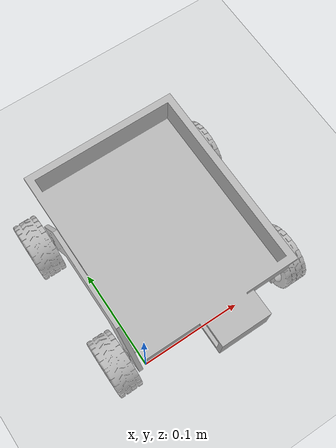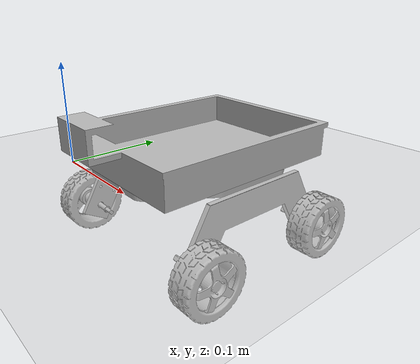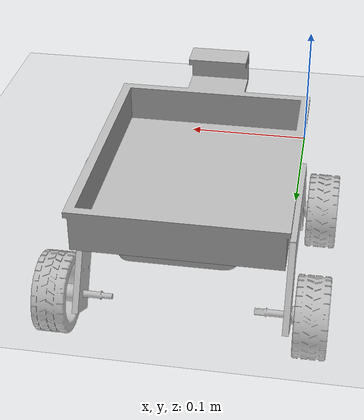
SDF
<?xml version="1.0" ?>
<sdf version="1.9">
  <world name="default">

    <plugin
      filename="gz-sim-physics-system"
      name="gz::sim::systems::Physics"/>

    <plugin
      filename="gz-sim-user-commands-system"
      name="gz::sim::systems::UserCommands"/>

    <plugin
      filename="gz-sim-scene-broadcaster-system"
      name="gz::sim::systems::SceneBroadcaster"/>

    <plugin
      filename="gz-sim-contact-system"
      name="gz::sim::systems::Contact"/>

    <light name="sun" type="directional">
      <cast_shadows>true</cast_shadows>
      <pose>0 0 10 0 0 0</pose>
      <diffuse>0.8 0.8 0.8 1</diffuse>
      <specular>0.2 0.2 0.2 1</specular>
      <direction>-0.5 0.1 -0.9</direction>
    </light>

    <model name="ground_plane">
      <static>true</static>
      <link name="link">
        <collision name="collision">
          <geometry>
            <plane>
              <normal>0 0 1</normal>
              <size>100 100</size>
            </plane>
          </geometry>
        </collision>

        <visual name="visual">
          <geometry>
            <plane>
              <normal>0 0 1</normal>
              <size>100 100</size>
            </plane>
          </geometry>
        </visual>
      </link>
    </model>

    <include>
      <uri>/home/ishan/Documents/ros_mobile_robot/fusionSDF</uri>
    </include>

  </world>
</sdf>

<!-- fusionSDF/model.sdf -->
<sdf version="1.9">
  <model name="finalassembly_v3">
    <link name="base_link">
      <inertial>
        <mass>0.0001</mass>
        <inertia>
          <ixx>1e-09</ixx>
          <ixy>0</ixy>
          <ixz>0</ixz>
          <iyy>1e-09</iyy>
          <iyz>0</iyz>
          <izz>1e-09</izz>
        </inertia>
      </inertial>
    </link>
    <link name="base_link_1">
      <inertial>
        <pose>0.08000000000000008 0.09545598293362575 0.0068908634732035455 0.0 -0.0 0.0</pose>
        <mass>3.9409647200439992</mass>
        <inertia>
          <ixx>0.017709947701599185</ixx>
          <ixy>1.7694179454963432e-16</ixy>
          <ixz>-8.673617379884035e-19</ixz>
          <iyy>0.013743217946582138</iyy>
          <iyz>0.000759111480018366</iyz>
          <izz>0.0282437401639066</izz>
        </inertia>
      </inertial>
      <visual name="base_link_1__body1_visual">
        <geometry>
          <mesh>
            <scale>0.01 0.01 0.01</scale>
            <uri>meshes/base_link_1/body1_visual.obj</uri>
          </mesh>
        </geometry>
      </visual>
      <visual name="base_link_1__body2_visual">
        <geometry>
          <mesh>
            <scale>0.01 0.01 0.01</scale>
            <uri>meshes/base_link_1/body2_visual.obj</uri>
          </mesh>
        </geometry>
      </visual>
      <visual name="base_link_1__body3_visual">
        <geometry>
          <mesh>
            <scale>0.01 0.01 0.01</scale>
            <uri>meshes/base_link_1/body3_visual.obj</uri>
          </mesh>
        </geometry>
      </visual>
      <visual name="base_link_1__body4_visual">
        <geometry>
          <mesh>
            <scale>0.01 0.01 0.01</scale>
            <uri>meshes/base_link_1/body4_visual.obj</uri>
          </mesh>
        </geometry>
      </visual>
      <collision name="base_link_1__body1_collision">
        <pose relative_to="__model__">0.08 0.1 0.0025 -0.0 -1.5707963267948966 0</pose>
        <geometry>
          <box>
            <size>0.005 0.2 0.16</size>
          </box>
        </geometry>
      </collision>
      <collision name="base_link_1__body2_collision">
        <pose relative_to="__model__">0.08000000011523997 0.08252724989330502 0.024728898786180623 -1.5707962706113654 -1.452306371266263 1.570796383375153</pose>
        <geometry>
          <box>
            <size>0.0586927001989503 0.2379625470209429 0.16499999983791291</size>
          </box>
        </geometry>
      </collision>
      <collision name="base_link_1__body3_collision">
        <pose relative_to="__model__">0.14750000000000013 0.10000000269189624 -0.03881569860407179 -0.0 -1.5707963267948966 0</pose>
        <geometry>
          <box>
            <size>0.07763139720814398 0.18696152422706638 0.035</size>
          </box>
        </geometry>
      </collision>
      <collision name="base_link_1__body4_collision">
        <pose relative_to="__model__">0.012500000000000011 0.10000000269189552 -0.038815698604071976 -0.0 -1.5707963267948966 0</pose>
        <geometry>
          <box>
            <size>0.07763139720814409 0.18696152422706638 0.03499999999999998</size>
          </box>
        </geometry>
      </collision>
    </link>
    <link name="front_left_wheel_1">
      <inertial>
        <pose>0.18119913055959916 0.02650941058119064 -0.058006850665017165 0.0 -0.0 0.0</pose>
        <mass>0.23963195508574156</mass>
        <inertia>
          <ixx>0.00015999625746217466</ixx>
          <ixy>5.079204962437495e-10</ixy>
          <ixz>-4.011342529842976e-10</ixz>
          <iyy>0.00010144075867908435</iyy>
          <iyz>1.9240309589692653e-10</iyz>
          <izz>0.0001014408426342206</izz>
        </inertia>
      </inertial>
      <visual name="front_left_wheel_1__body1_visual">
        <geometry>
          <mesh>
            <scale>0.01 0.01 0.01</scale>
            <uri>meshes/front_left_wheel_1/body1_visual.obj</uri>
          </mesh>
        </geometry>
      </visual>
      <visual name="front_left_wheel_1__body2_visual">
        <geometry>
          <mesh>
            <scale>0.01 0.01 0.01</scale>
            <uri>meshes/front_left_wheel_1/body2_visual.obj</uri>
          </mesh>
        </geometry>
      </visual>
      <collision name="front_left_wheel_1__body1_collision">
        <pose relative_to="__model__">0.15527000000000016 0.0265096216351296 -0.058007041555161856 -0.0 -1.5707963267948966 0</pose>
        <geometry>
          <box>
            <size>0.007200000000000007 0.007199999999999997 0.03726000000000001</size>
          </box>
        </geometry>
      </collision>
      <collision name="front_left_wheel_1__body2_collision">
        <pose relative_to="__model__">0.18010000000000015 0.026509621635129533 -0.0580070415551619 -0.0 -1.5707963267948966 0</pose>
        <geometry>
          <box>
            <size>0.06500000000000003 0.06500000000000002 0.028200000000000003</size>
          </box>
        </geometry>
      </collision>
    </link>
    <link name="rear_left_wheel_1">
      <inertial>
        <pose>0.18119913055959913 0.17349016693742006 -0.05800685066501671 0.0 -0.0 0.0</pose>
        <mass>0.23963195508574073</mass>
        <inertia>
          <ixx>0.0001599965333883447</ixx>
          <ixy>2.5793205592206103e-10</ixy>
          <ixz>-4.0113425255061674e-10</ixz>
          <iyy>0.00010144075867908435</iyy>
          <iyz>2.7243130754778244e-10</iyz>
          <izz>0.00010144111856039313</izz>
        </inertia>
      </inertial>
      <visual name="rear_left_wheel_1__body1_visual">
        <geometry>
          <mesh>
            <scale>0.01 0.01 0.01</scale>
            <uri>meshes/rear_left_wheel_1/body1_visual.obj</uri>
          </mesh>
        </geometry>
      </visual>
      <visual name="rear_left_wheel_1__body2_visual">
        <geometry>
          <mesh>
            <scale>0.01 0.01 0.01</scale>
            <uri>meshes/rear_left_wheel_1/body2_visual.obj</uri>
          </mesh>
        </geometry>
      </visual>
      <collision name="rear_left_wheel_1__body1_collision">
        <pose relative_to="__model__">0.15527000000000013 0.17349038374866196 -0.05800704155516142 -0.0 -1.5707963267948966 0</pose>
        <geometry>
          <box>
            <size>0.007200000000000007 0.0071999999999999885 0.03726000000000001</size>
          </box>
        </geometry>
      </collision>
      <collision name="rear_left_wheel_1__body2_collision">
        <pose relative_to="__model__">0.1801000000000001 0.1734903837486619 -0.058007041555161475 -0.0 -1.5707963267948966 0</pose>
        <geometry>
          <box>
            <size>0.06500000000000003 0.065 0.028200000000000003</size>
          </box>
        </geometry>
      </collision>
    </link>
    <link name="front_right_wheel_1">
      <inertial>
        <pose>-0.021199138957676604 0.02650982708653022 -0.058006862365527455 0.0 -0.0 0.0</pose>
        <mass>0.23963191405046214</mass>
        <inertia>
          <ixx>0.0001599962599784674</ixx>
          <ixy>5.652733068683535e-10</ixy>
          <ixz>4.920400952998505e-10</ixz>
          <iyy>0.00010144045788691204</iyy>
          <iyz>-1.6255333477920367e-10</iyz>
          <izz>0.0001014405373198497</izz>
        </inertia>
      </inertial>
      <visual name="front_right_wheel_1__body1_visual">
        <geometry>
          <mesh>
            <scale>0.01 0.01 0.01</scale>
            <uri>meshes/front_right_wheel_1/body1_visual.obj</uri>
          </mesh>
        </geometry>
      </visual>
      <visual name="front_right_wheel_1__body2_visual">
        <geometry>
          <mesh>
            <scale>0.01 0.01 0.01</scale>
            <uri>meshes/front_right_wheel_1/body2_visual.obj</uri>
          </mesh>
        </geometry>
      </visual>
      <collision name="front_right_wheel_1__body1_collision">
        <pose relative_to="__model__">0.004730000000000029 0.026509621635128714 -0.05800704155516202 -0.0 -1.5707963267948966 0</pose>
        <geometry>
          <box>
            <size>0.007200000000000007 0.007200000000000007 0.03726000000000001</size>
          </box>
        </geometry>
      </collision>
      <collision name="front_right_wheel_1__body2_collision">
        <pose relative_to="__model__">-0.02009999999999998 0.026509621635128752 -0.058007041555162064 -0.0 -1.5707963267948966 0</pose>
        <geometry>
          <box>
            <size>0.06500000000000002 0.06500000000000002 0.028200000000000003</size>
          </box>
        </geometry>
      </collision>
    </link>
    <link name="rear_right_wheel_1">
      <inertial>
        <pose>-0.021199138957676535 0.17349058344363225 -0.05800686236552762 0.0 -0.0 0.0</pose>
        <mass>0.23963191405045922</mass>
        <inertia>
          <ixx>0.00015999653586396337</ixx>
          <ixy>5.945159233617867e-10</ixy>
          <ixz>4.920400964924729e-10</ixz>
          <iyy>0.00010144045788691063</iyy>
          <iyz>-8.253723659396028e-11</iyz>
          <izz>0.00010144081320534806</izz>
        </inertia>
      </inertial>
      <visual name="rear_right_wheel_1__body1_visual">
        <geometry>
          <mesh>
            <scale>0.01 0.01 0.01</scale>
            <uri>meshes/rear_right_wheel_1/body1_visual.obj</uri>
          </mesh>
        </geometry>
      </visual>
      <visual name="rear_right_wheel_1__body2_visual">
        <geometry>
          <mesh>
            <scale>0.01 0.01 0.01</scale>
            <uri>meshes/rear_right_wheel_1/body2_visual.obj</uri>
          </mesh>
        </geometry>
      </visual>
      <collision name="rear_right_wheel_1__body1_collision">
        <pose relative_to="__model__">0.004730000000000003 0.1734903837486623 -0.05800704155516154 -0.0 -1.5707963267948966 0</pose>
        <geometry>
          <box>
            <size>0.007200000000000007 0.0071999999999999885 0.037260000000000015</size>
          </box>
        </geometry>
      </collision>
      <collision name="rear_right_wheel_1__body2_collision">
        <pose relative_to="__model__">-0.02010000000000012 0.173490383748662 -0.058007041555162404 -0.0 -1.5707963267948966 0</pose>
        <geometry>
          <box>
            <size>0.06500000000000002 0.06499999999999999 0.028200000000000412</size>
          </box>
        </geometry>
      </collision>
    </link>
    <joint name="revolute_1" type="continuous">
      <pose relative_to="__model__">0.16500000000000015 0.02650962163512962 -0.0580070415551618 0.0 -0.0 0.0</pose>
      <parent>base_link_1</parent>
      <child>front_left_wheel_1</child>
      <axis>
        <xyz expressed_in="__model__">0.9999999999999996 0.0 5.117292425077455e-16</xyz>
      </axis>
    </joint>
    <joint name="revolute_2" type="continuous">
      <pose relative_to="__model__">0.16500000000000015 0.17349038374866205 -0.05800704155516137 0.0 -0.0 0.0</pose>
      <parent>base_link_1</parent>
      <child>rear_left_wheel_1</child>
      <axis>
        <xyz expressed_in="__model__">-0.9999999999999996 0.0 -5.117292425077455e-16</xyz>
      </axis>
    </joint>
    <joint name="revolute_3" type="continuous">
      <pose relative_to="__model__">-0.004999999999999974 0.02650962163512876 -0.05800704155516197 0.0 -0.0 0.0</pose>
      <parent>base_link_1</parent>
      <child>front_right_wheel_1</child>
      <axis>
        <xyz expressed_in="__model__">1.0000000000000013 0.0 -5.012406971746356e-16</xyz>
      </axis>
    </joint>
    <joint name="revolute_4" type="continuous">
      <pose relative_to="__model__">-0.004999999999999996 0.1734903837486621 -0.058007041555161905 0.0 -0.0 0.0</pose>
      <parent>base_link_1</parent>
      <child>rear_right_wheel_1</child>
      <axis>
        <xyz expressed_in="__model__">1.0000000000000013 0.0 -5.012406971746356e-16</xyz>
      </axis>
    </joint>
  </model>
</sdf>
